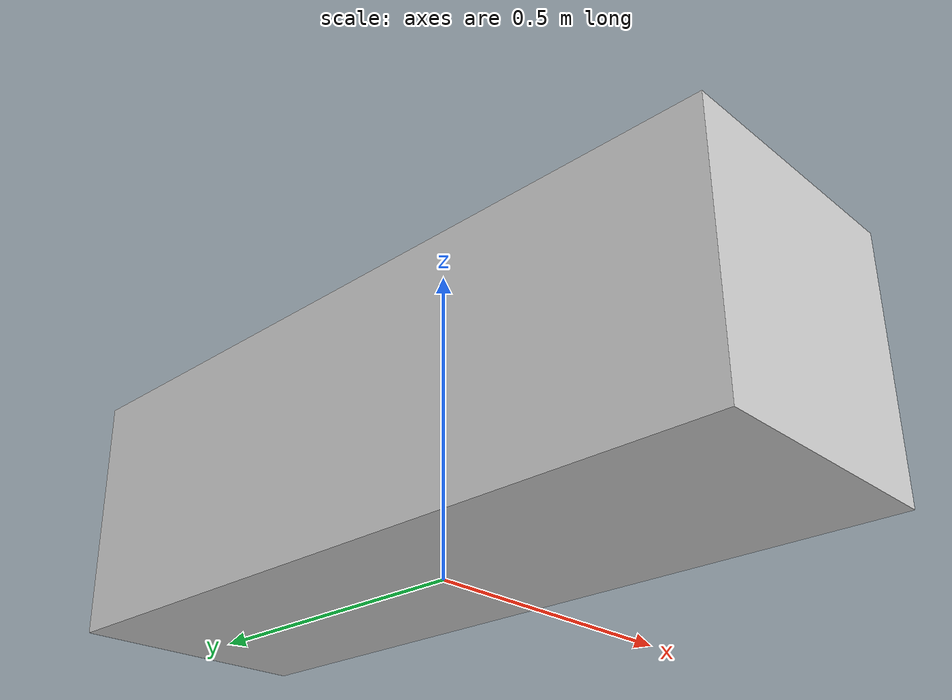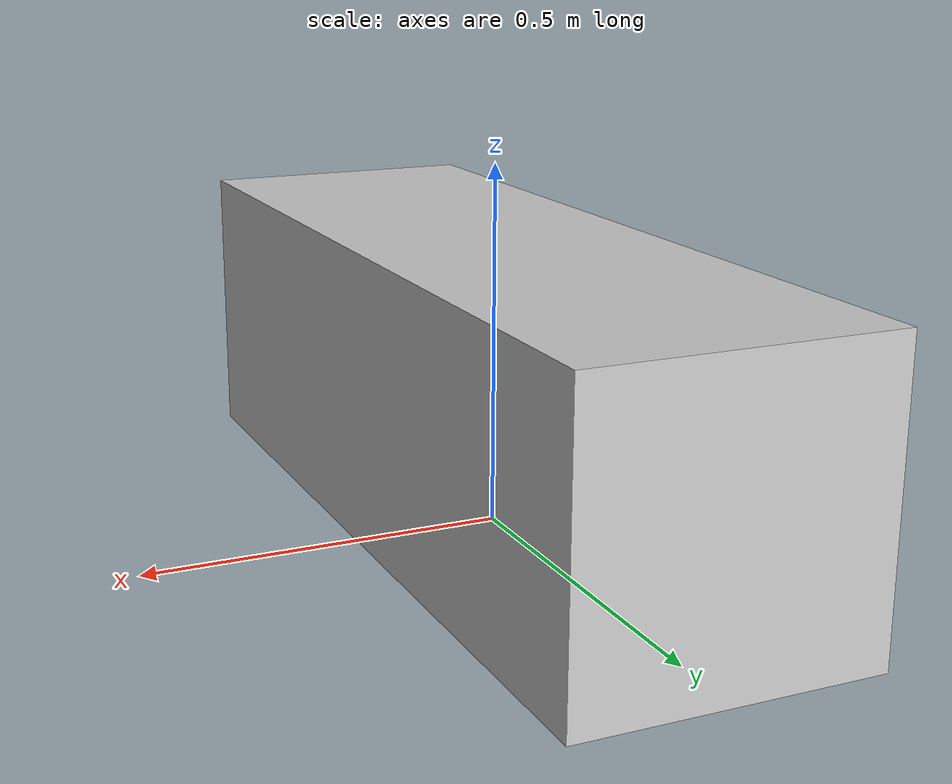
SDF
<?xml version="1.0"?>
<sdf version="1.6">
  <model name="rwc2013/bedroom_cabinet">
    <link name="1_link">
      <collision name="1_col">
        <geometry>
          <box>
            <size>0.406 1.214 0.4</size>
          </box>
        </geometry>
      </collision>
      <visual name="1_vis">
        <geometry>
          <box>
            <size>0.406 1.214 0.4</size>
          </box>
        </geometry>
        <material>
          <ambient>0.8 0.8 0.8 1</ambient>
        </material>
      </visual>
      <pose>0.0 0.0 0.2 0 0 0</pose>
    </link>
    <static>true</static>
  </model>
</sdf>
